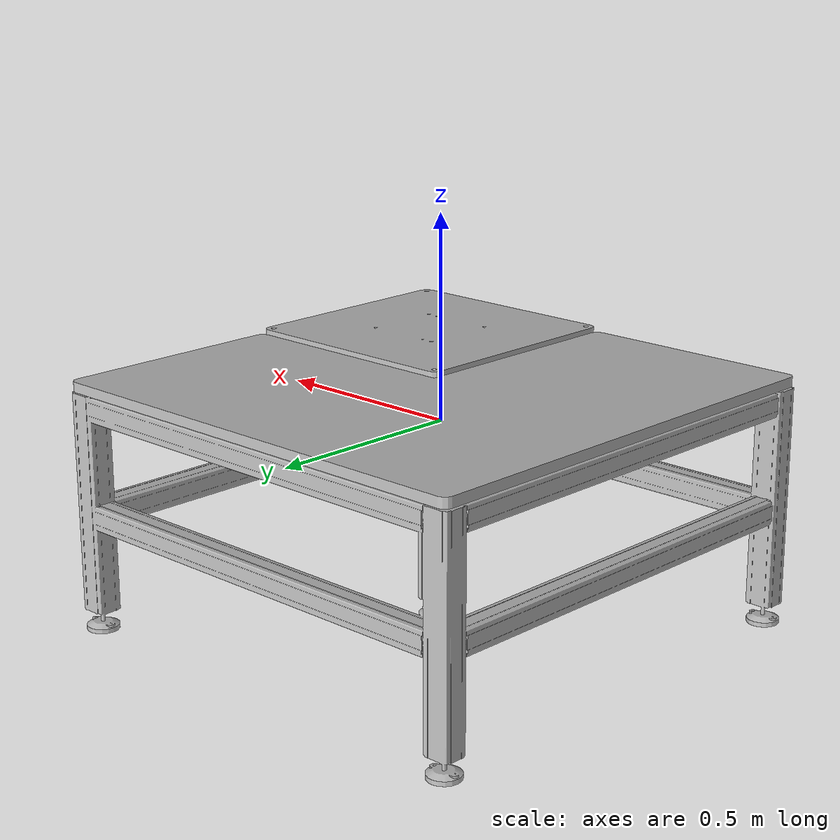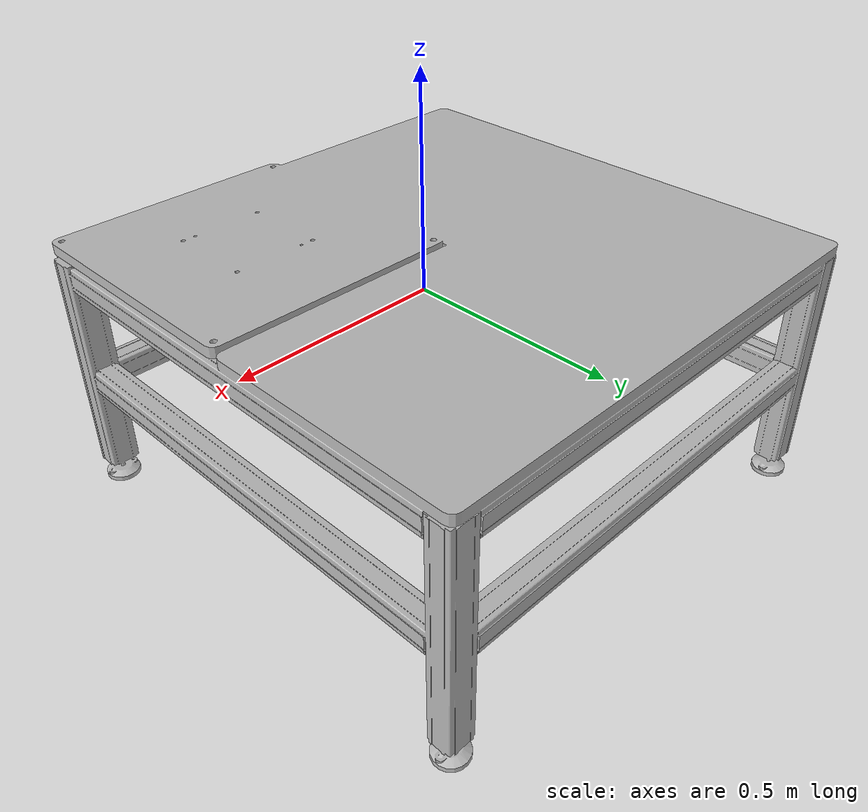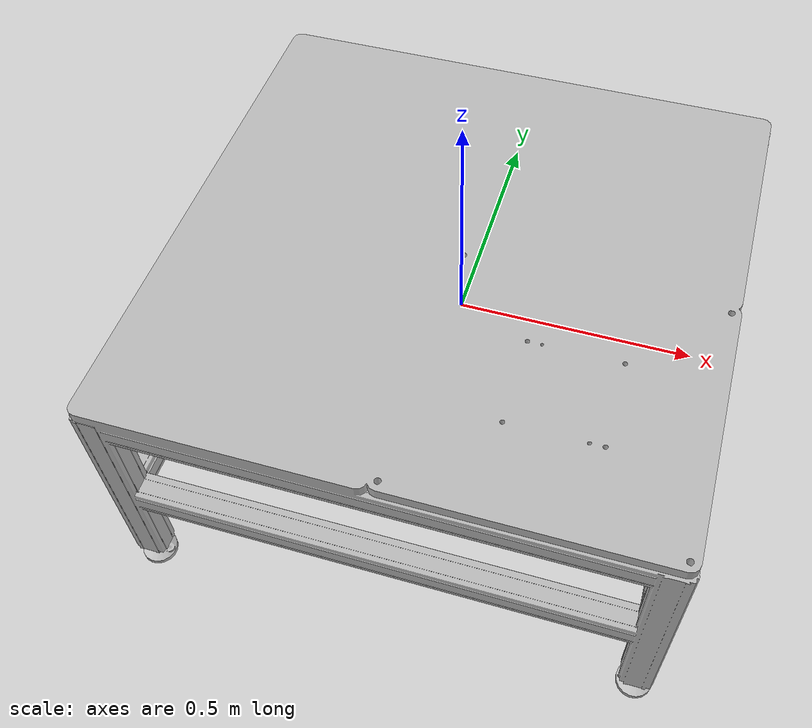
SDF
<?xml version="1.0"?>
<sdf version="1.9">
  <model name="table_yaskawa">
    <static>true</static>
    <link name="table_yaskawa_link">
      <visual name="table_yaskawa_visual">
        <geometry>
          <mesh>
            <uri>model://table_yaskawa/meshes/table_yaskawa.stl</uri>
            <scale>0.001 0.001 0.001</scale>
          </mesh>
        </geometry>
      </visual>
      <collision name="table_yaskawa_collision">
        <geometry>
          <mesh>
            <uri>model://table_yaskawa/meshes/table_yaskawa.stl</uri>
            <scale>0.001 0.001 0.001</scale>
          </mesh>
        </geometry>
      </collision>
    </link>
  </model>
</sdf>
